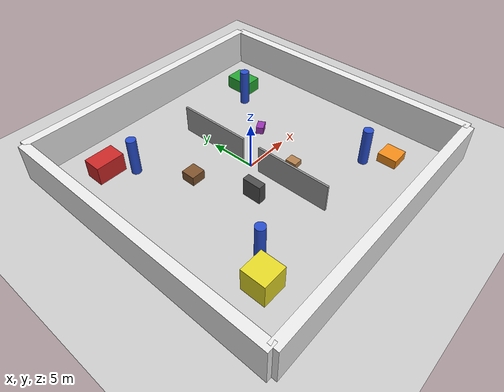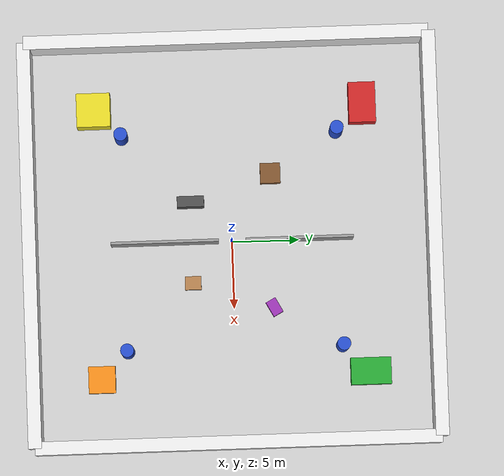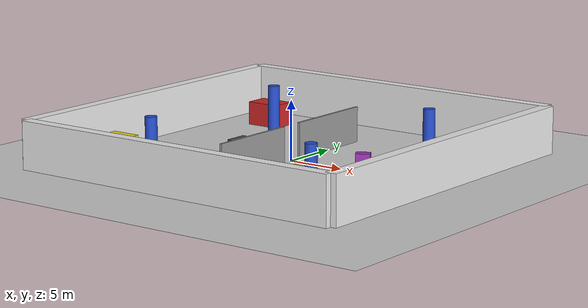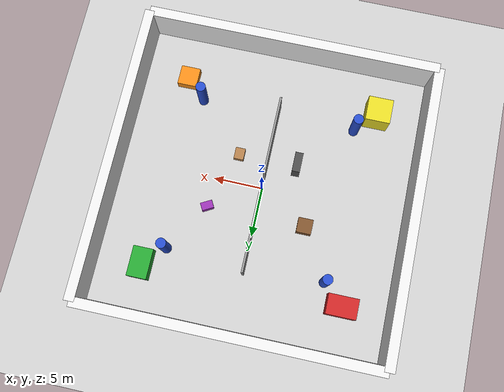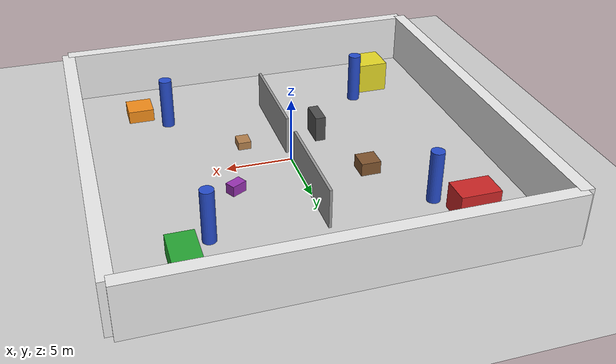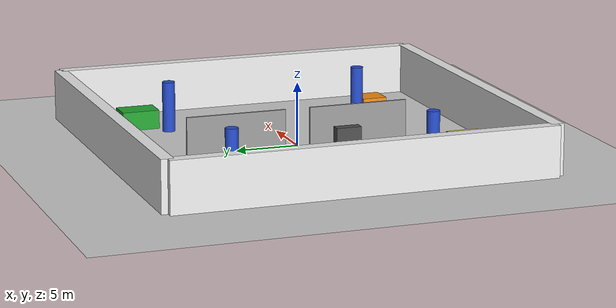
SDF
<?xml version="1.0" ?>
<sdf version="1.6">
  <world name="factory">

    <!-- Physics settings -->
    <physics name='default_physics' default='0' type='ode'>
      <gravity>0 0 -9.8066</gravity>
      <ode>
        <solver>
          <type>quick</type>
          <iters>10</iters>
          <sor>1.3</sor>
          <use_dynamic_moi_rescaling>0</use_dynamic_moi_rescaling>
        </solver>
        <constraints>
          <cfm>0</cfm>
          <erp>0.2</erp>
          <contact_max_correcting_vel>100</contact_max_correcting_vel>
          <contact_surface_layer>0.001</contact_surface_layer>
        </constraints>
      </ode>
      <max_step_size>0.004</max_step_size>
      <real_time_factor>1</real_time_factor>
      <real_time_update_rate>250</real_time_update_rate>
      <magnetic_field>6e-06 2.3e-05 -4.2e-05</magnetic_field>
    </physics>

    <!-- Lighting -->
    <light name='sun' type='directional'>
      <cast_shadows>1</cast_shadows>
      <pose>0 0 10 0 -0 0</pose>
      <diffuse>0.8 0.8 0.8 1</diffuse>
      <specular>0.2 0.2 0.2 1</specular>
      <attenuation>
        <range>1000</range>
        <constant>0.9</constant>
        <linear>0.01</linear>
        <quadratic>0.001</quadratic>
      </attenuation>
      <direction>-0.5 0.1 -0.9</direction>
    </light>

    <!-- Ground plane -->
    <model name="ground_plane">
      <static>true</static>
      <link name="link">
        <collision name="collision">
          <geometry>
            <plane>
              <normal>0 0 1</normal>
              <size>50 50</size>
            </plane>
          </geometry>
          <surface>
            <friction>
              <ode>
                <mu>100</mu>
                <mu2>50</mu2>
              </ode>
            </friction>
          </surface>
        </collision>
        <visual name="visual">
          <geometry>
            <plane>
              <normal>0 0 1</normal>
              <size>50 50</size>
            </plane>
          </geometry>
          <material>
            <script>
              <uri>file://media/materials/scripts/gazebo.material</uri>
              <name>Gazebo/Grey</name>
            </script>
          </material>
        </visual>
      </link>
    </model>

    <!-- Factory outer walls -->
    <!-- North Wall -->
    <model name="north_wall">
      <static>true</static>
      <pose>0 15 2 0 0 0</pose>
      <link name="link">
        <collision name="collision">
          <geometry>
            <box>
              <size>30 1 4</size>
            </box>
          </geometry>
        </collision>
        <visual name="visual">
          <geometry>
            <box>
              <size>30 1 4</size>
            </box>
          </geometry>
          <material>
            <script>
              <uri>file://media/materials/scripts/gazebo.material</uri>
              <name>Gazebo/White</name>
            </script>
          </material>
        </visual>
      </link>
    </model>

    <!-- South Wall -->
    <model name="south_wall">
      <static>true</static>
      <pose>0 -15 2 0 0 0</pose>
      <link name="link">
        <collision name="collision">
          <geometry>
            <box>
              <size>30 1 4</size>
            </box>
          </geometry>
        </collision>
        <visual name="visual">
          <geometry>
            <box>
              <size>30 1 4</size>
            </box>
          </geometry>
          <material>
            <script>
              <uri>file://media/materials/scripts/gazebo.material</uri>
              <name>Gazebo/White</name>
            </script>
          </material>
        </visual>
      </link>
    </model>

    <!-- East Wall -->
    <model name="east_wall">
      <static>true</static>
      <pose>15 0 2 0 0 0</pose>
      <link name="link">
        <collision name="collision">
          <geometry>
            <box>
              <size>1 30 4</size>
            </box>
          </geometry>
        </collision>
        <visual name="visual">
          <geometry>
            <box>
              <size>1 30 4</size>
            </box>
          </geometry>
          <material>
            <script>
              <uri>file://media/materials/scripts/gazebo.material</uri>
              <name>Gazebo/White</name>
            </script>
          </material>
        </visual>
      </link>
    </model>

    <!-- West Wall -->
    <model name="west_wall">
      <static>true</static>
      <pose>-15 0 2 0 0 0</pose>
      <link name="link">
        <collision name="collision">
          <geometry>
            <box>
              <size>1 30 4</size>
            </box>
          </geometry>
        </collision>
        <visual name="visual">
          <geometry>
            <box>
              <size>1 30 4</size>
            </box>
          </geometry>
          <material>
            <script>
              <uri>file://media/materials/scripts/gazebo.material</uri>
              <name>Gazebo/White</name>
            </script>
          </material>
        </visual>
      </link>
    </model>

    <!-- Support columns -->
    <!-- Column 1 -->
    <model name="column_1">
      <static>true</static>
      <pose>-8 8 2 0 0 0</pose>
      <link name="link">
        <collision name="collision">
          <geometry>
            <cylinder>
              <radius>0.5</radius>
              <length>4</length>
            </cylinder>
          </geometry>
        </collision>
        <visual name="visual">
          <geometry>
            <cylinder>
              <radius>0.5</radius>
              <length>4</length>
            </cylinder>
          </geometry>
          <material>
            <script>
              <uri>file://media/materials/scripts/gazebo.material</uri>
              <name>Gazebo/Blue</name>
            </script>
          </material>
        </visual>
      </link>
    </model>

    <!-- Column 2 -->
    <model name="column_2">
      <static>true</static>
      <pose>8 8 2 0 0 0</pose>
      <link name="link">
        <collision name="collision">
          <geometry>
            <cylinder>
              <radius>0.5</radius>
              <length>4</length>
            </cylinder>
          </geometry>
        </collision>
        <visual name="visual">
          <geometry>
            <cylinder>
              <radius>0.5</radius>
              <length>4</length>
            </cylinder>
          </geometry>
          <material>
            <script>
              <uri>file://media/materials/scripts/gazebo.material</uri>
              <name>Gazebo/Blue</name>
            </script>
          </material>
        </visual>
      </link>
    </model>

    <!-- Column 3 -->
    <model name="column_3">
      <static>true</static>
      <pose>-8 -8 2 0 0 0</pose>
      <link name="link">
        <collision name="collision">
          <geometry>
            <cylinder>
              <radius>0.5</radius>
              <length>4</length>
            </cylinder>
          </geometry>
        </collision>
        <visual name="visual">
          <geometry>
            <cylinder>
              <radius>0.5</radius>
              <length>4</length>
            </cylinder>
          </geometry>
          <material>
            <script>
              <uri>file://media/materials/scripts/gazebo.material</uri>
              <name>Gazebo/Blue</name>
            </script>
          </material>
        </visual>
      </link>
    </model>

    <!-- Column 4 -->
    <model name="column_4">
      <static>true</static>
      <pose>8 -8 2 0 0 0</pose>
      <link name="link">
        <collision name="collision">
          <geometry>
            <cylinder>
              <radius>0.5</radius>
              <length>4</length>
            </cylinder>
          </geometry>
        </collision>
        <visual name="visual">
          <geometry>
            <cylinder>
              <radius>0.5</radius>
              <length>4</length>
            </cylinder>
          </geometry>
          <material>
            <script>
              <uri>file://media/materials/scripts/gazebo.material</uri>
              <name>Gazebo/Blue</name>
            </script>
          </material>
        </visual>
      </link>
    </model>

    <!-- Factory machines -->
    <!-- Machine 1 - Large manufacturing unit -->
    <model name="machine_1">
      <static>true</static>
      <pose>-10 10 1 0 0 0</pose>
      <link name="link">
        <collision name="collision">
          <geometry>
            <box>
              <size>3 2 2</size>
            </box>
          </geometry>
        </collision>
        <visual name="visual">
          <geometry>
            <box>
              <size>3 2 2</size>
            </box>
          </geometry>
          <material>
            <script>
              <uri>file://media/materials/scripts/gazebo.material</uri>
              <name>Gazebo/Red</name>
            </script>
          </material>
        </visual>
      </link>
    </model>

    <!-- Machine 2 - Assembly station -->
    <model name="machine_2">
      <static>true</static>
      <pose>10 10 0.75 0 0 0</pose>
      <link name="link">
        <collision name="collision">
          <geometry>
            <box>
              <size>2 3 1.5</size>
            </box>
          </geometry>
        </collision>
        <visual name="visual">
          <geometry>
            <box>
              <size>2 3 1.5</size>
            </box>
          </geometry>
          <material>
            <script>
              <uri>file://media/materials/scripts/gazebo.material</uri>
              <name>Gazebo/Green</name>
            </script>
          </material>
        </visual>
      </link>
    </model>

    <!-- Machine 3 - Processing unit -->
    <model name="machine_3">
      <static>true</static>
      <pose>-10 -10 1.25 0 0 0</pose>
      <link name="link">
        <collision name="collision">
          <geometry>
            <box>
              <size>2.5 2.5 2.5</size>
            </box>
          </geometry>
        </collision>
        <visual name="visual">
          <geometry>
            <box>
              <size>2.5 2.5 2.5</size>
            </box>
          </geometry>
          <material>
            <script>
              <uri>file://media/materials/scripts/gazebo.material</uri>
              <name>Gazebo/Yellow</name>
            </script>
          </material>
        </visual>
      </link>
    </model>

    <!-- Machine 4 - Quality control station -->
    <model name="machine_4">
      <static>true</static>
      <pose>10 -10 0.5 0 0 0</pose>
      <link name="link">
        <collision name="collision">
          <geometry>
            <box>
              <size>2 2 1</size>
            </box>
          </geometry>
        </collision>
        <visual name="visual">
          <geometry>
            <box>
              <size>2 2 1</size>
            </box>
          </geometry>
          <material>
            <script>
              <uri>file://media/materials/scripts/gazebo.material</uri>
              <name>Gazebo/Orange</name>
            </script>
          </material>
        </visual>
      </link>
    </model>

    <!-- Static obstacles -->
    <!-- Obstacle 1 - Storage boxes -->
    <model name="storage_boxes_1">
      <static>true</static>
      <pose>-5 3 0.5 0 0 0</pose>
      <link name="link">
        <collision name="collision">
          <geometry>
            <box>
              <size>1.5 1.5 1</size>
            </box>
          </geometry>
        </collision>
        <visual name="visual">
          <geometry>
            <box>
              <size>1.5 1.5 1</size>
            </box>
          </geometry>
          <material>
            <script>
              <uri>file://media/materials/scripts/gazebo.material</uri>
              <name>Gazebo/Brown</name>
            </script>
          </material>
        </visual>
      </link>
    </model>

    <!-- Obstacle 2 - Material cart -->
    <model name="material_cart">
      <static>true</static>
      <pose>5 3 0.4 0 0 0.5</pose>
      <link name="link">
        <collision name="collision">
          <geometry>
            <box>
              <size>1.2 0.8 0.8</size>
            </box>
          </geometry>
        </collision>
        <visual name="visual">
          <geometry>
            <box>
              <size>1.2 0.8 0.8</size>
            </box>
          </geometry>
          <material>
            <script>
              <uri>file://media/materials/scripts/gazebo.material</uri>
              <name>Gazebo/Purple</name>
            </script>
          </material>
        </visual>
      </link>
    </model>

    <!-- Obstacle 3 - Equipment rack -->
    <model name="equipment_rack">
      <static>true</static>
      <pose>-3 -3 1 0 0 0</pose>
      <link name="link">
        <collision name="collision">
          <geometry>
            <box>
              <size>0.8 2 2</size>
            </box>
          </geometry>
        </collision>
        <visual name="visual">
          <geometry>
            <box>
              <size>0.8 2 2</size>
            </box>
          </geometry>
          <material>
            <script>
              <uri>file://media/materials/scripts/gazebo.material</uri>
              <name>Gazebo/DarkGrey</name>
            </script>
          </material>
        </visual>
      </link>
    </model>

    <!-- Obstacle 4 - Pallet stack -->
    <model name="pallet_stack">
      <static>true</static>
      <pose>3 -3 0.3 0 0 0</pose>
      <link name="link">
        <collision name="collision">
          <geometry>
            <box>
              <size>1 1.2 0.6</size>
            </box>
          </geometry>
        </collision>
        <visual name="visual">
          <geometry>
            <box>
              <size>1 1.2 0.6</size>
            </box>
          </geometry>
          <material>
            <script>
              <uri>file://media/materials/scripts/gazebo.material</uri>
              <name>Gazebo/Wood</name>
            </script>
          </material>
        </visual>
      </link>
    </model>

    <!-- Internal walls creating passages -->
    <!-- Partition wall 1 -->
    <model name="partition_1">
      <static>true</static>
      <pose>0 5 1.5 0 0 1.57</pose>
      <link name="link">
        <collision name="collision">
          <geometry>
            <box>
              <size>8 0.2 3</size>
            </box>
          </geometry>
        </collision>
        <visual name="visual">
          <geometry>
            <box>
              <size>8 0.2 3</size>
            </box>
          </geometry>
          <material>
            <script>
              <uri>file://media/materials/scripts/gazebo.material</uri>
              <name>Gazebo/Grey</name>
            </script>
          </material>
        </visual>
      </link>
    </model>

    <!-- Partition wall 2 -->
    <model name="partition_2">
      <static>true</static>
      <pose>0 -5 1.5 0 0 1.57</pose>
      <link name="link">
        <collision name="collision">
          <geometry>
            <box>
              <size>8 0.2 3</size>
            </box>
          </geometry>
        </collision>
        <visual name="visual">
          <geometry>
            <box>
              <size>8 0.2 3</size>
            </box>
          </geometry>
          <material>
            <script>
              <uri>file://media/materials/scripts/gazebo.material</uri>
              <name>Gazebo/Grey</name>
            </script>
          </material>
        </visual>
      </link>
    </model>

    <!-- GUI settings -->
    <gui fullscreen='0'>
      <camera name='user_camera'>
        <pose>12.6136 -12.7456 12.2479 0 0.463647 2.24019</pose>
        <view_controller>orbit</view_controller>
      </camera>
    </gui>

  </world>
</sdf>
